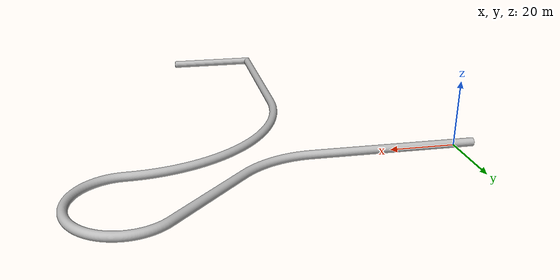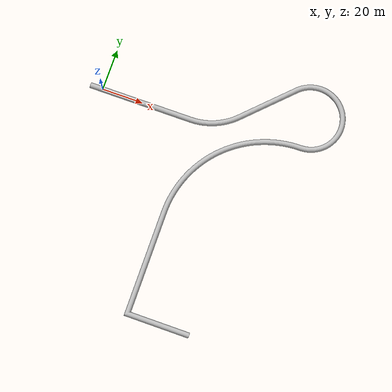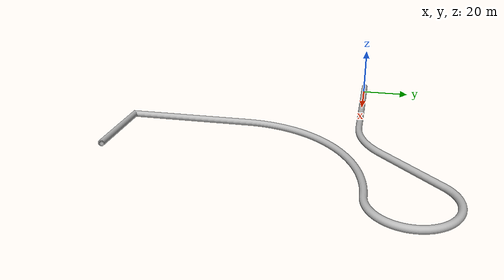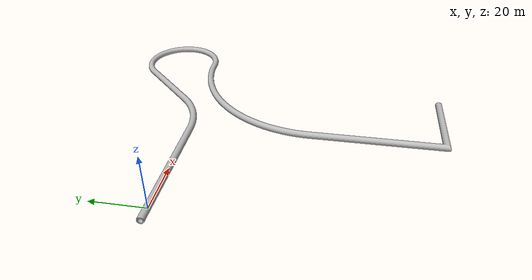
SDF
<?xml version="1.0"?>
<sdf version="1.5">
  <world name="default">
    <include>
      <uri>model://sun</uri>
    </include>
    <include>
      <uri>model://sewage_pipe_3</uri>
      <static>true</static>
      <pose>-6 0 0.5 0 0 0</pose>
    </include>

  </world>
</sdf>

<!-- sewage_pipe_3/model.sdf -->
<sdf version="1.6">
    <model name="sewage_pipe_2">
      <pose>0 0 1.8 0 0 0</pose>
      <static>true</static>
      <link name="sewage_pipe_link">
        <collision name="collision_pipe">
          <geometry>
            <mesh>
                <uri>model://sewage_pipe_2/meshes/sewage_pipe_2.stl</uri>
            </mesh>
          </geometry>
          <surface>
            <friction>
              <ode>
                <mu>100</mu>
                <mu2>50</mu2>
              </ode>
            </friction>
          </surface>
        </collision>
        <visual name="visual_pipe">
          <geometry>
            <mesh>
                <uri>model://sewage_pipe_2/meshes/sewage_pipe_2.dae</uri>
            </mesh>
          </geometry>
          <material>
          <script>
            <uri>model://sewage_pipe_3/materials/scripts</uri>
            <uri>model://sewage_pipe_3/materials/textures</uri>
            <name>pipe/concrete</name>
          </script>
        </material>
        </visual>
      </link>
    </model>
</sdf>
